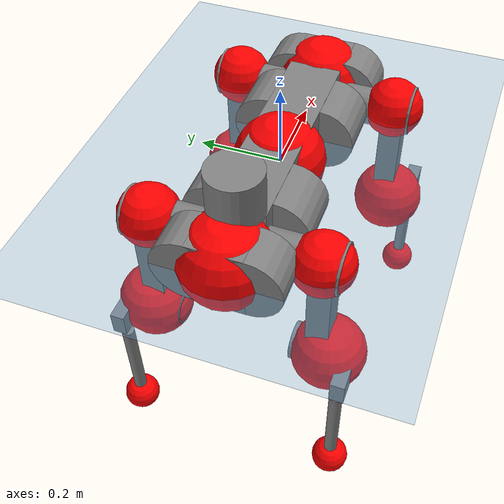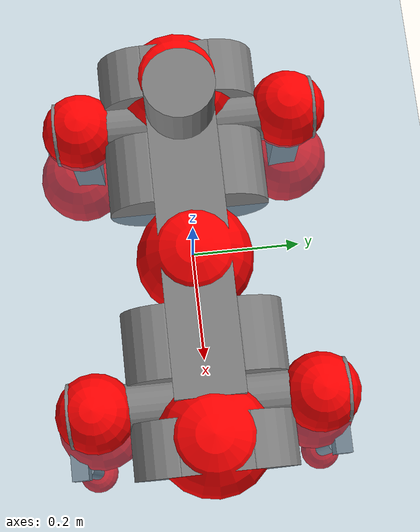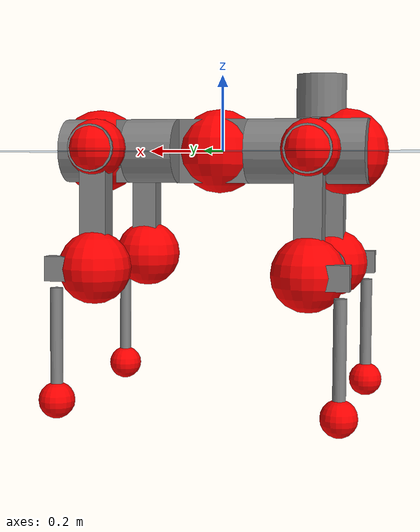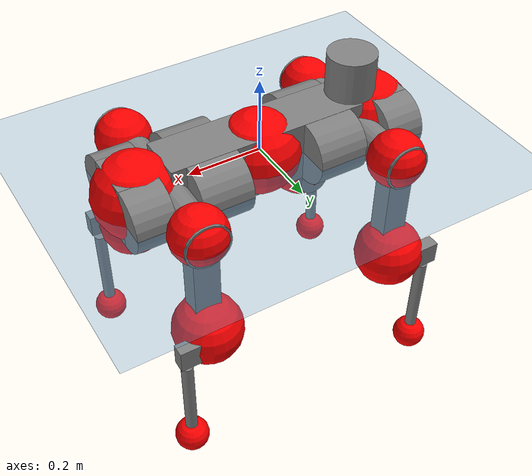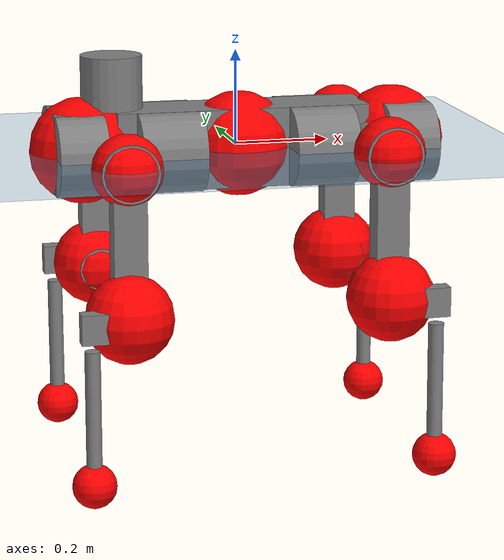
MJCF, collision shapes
<mujoco model="anymal_c">
  <compiler angle="radian" assetdir="assets" balanceinertia="true" inertiafromgeom="false"/>

  <option timestep="0.005" density="1.2" viscosity="2e-05"/>

  <size nkey="1"/>

  <visual>
    <quality shadowsize="8192"/>
    <map shadowclip="0.5"/>
  </visual>

  <default>
    <default class="/">
      <material specular="0" shininess="0.25"/>
      <geom contype="0" conaffinity="0" group="1" solref="-1000 -80"/>
      <site size="0.01 0.005 0.005" group="5"/>
      <general forcelimited="true" forcerange="-80 80" biastype="affine" gainprm="80" biasprm="0 -80 -2"/>
      <default class="anymal_c">
        <joint armature="0.01" damping="0.01" frictionloss="0.1"/>
        <default class="visual">
          <geom type="mesh" group="2"/>
          <default class="visual_zflip"/>
        </default>
        <default class="collision">
          <geom type="cylinder" group="3"/>
          <default class="foot">
            <geom size="0.03 0 0" type="sphere" condim="6" priority="1" friction="0.8 0.02 0.01" solimp="0.015 1 0.03"/>
          </default>
        </default>
      </default>
      <default class="reward_collision_sphere">
        <geom group="5" rgba="1 0 0 1"/>
      </default>
    </default>
  </default>

  <asset>
    <texture type="skybox" colorspace="auto" name="//unnamed_texture_0" builtin="gradient" rgb1="0.95 0.95 0.95" rgb2="0.95 0.95 0.95" width="100" height="600"/>
    <texture type="2d" colorspace="auto" name="texplane" builtin="checker" rgb1="0.345 0.575 0.748" rgb2="0.345 0.575 0.748" markrgb="1 1 1" width="512" height="512"/>
    <texture type="2d" colorspace="linear" name="base" file="base.png"/>
    <texture type="2d" colorspace="linear" name="top_shell" file="top_shell.png"/>
    <texture type="2d" colorspace="linear" name="bottom_shell" file="bottom_shell.png"/>
    <texture type="2d" colorspace="linear" name="remote" file="remote.png"/>
    <texture type="2d" colorspace="linear" name="hatch" file="hatch.png"/>
    <texture type="2d" colorspace="linear" name="handle" file="handle.png"/>
    <texture type="2d" colorspace="linear" name="face" file="face.png"/>
    <texture type="2d" colorspace="linear" name="battery" file="battery.png"/>
    <texture type="2d" colorspace="linear" name="lidar_cage" file="lidar_cage.png"/>
    <texture type="2d" colorspace="linear" name="depth_camera" file="depth_camera.png"/>
    <texture type="2d" colorspace="linear" name="wide_angle_camera" file="wide_angle_camera.png"/>
    <texture type="2d" colorspace="linear" name="lidar" file="lidar.png"/>
    <texture type="2d" colorspace="linear" name="drive" file="drive.png"/>
    <texture type="2d" colorspace="linear" name="hip_l" file="hip_l.png"/>
    <texture type="2d" colorspace="linear" name="shank_l" file="shank_l.png"/>
    <texture type="2d" colorspace="linear" name="foot" file="foot.png"/>
    <texture type="2d" colorspace="linear" name="thigh" file="thigh.png"/>
    <texture type="2d" colorspace="linear" name="shank_r" file="shank_r.png"/>
    <texture type="2d" colorspace="linear" name="hip_r" file="hip_r.png"/>
    <material name="MatPlane" class="/" texture="texplane" texuniform="true" texrepeat="2 2" specular="0.9" shininess="0.5"/>
    <material name="black_plastic" class="/" rgba="0.007 0.007 0.007 1"/>
    <material name="green" class="/" rgba="0.052 0.178 0.033 1"/>
    <material name="red" class="/" rgba="0.178 0.006 0.005 1"/>
    <material name="yellow" class="/" rgba="0.178 0.119 0.006 1"/>
    <material name="lwl" class="/" rgba="0.8 0.8 0.8 1"/>
    <material name="base" class="/" texture="base"/>
    <material name="top_shell" class="/" texture="top_shell"/>
    <material name="bottom_shell" class="/" texture="bottom_shell"/>
    <material name="hip_l" class="/" texture="hip_l"/>
    <material name="thigh" class="/" texture="thigh"/>
    <material name="shank_l" class="/" texture="shank_l"/>
    <material name="foot" class="/" texture="foot"/>
    <material name="hip_r" class="/" texture="hip_r"/>
    <material name="shank" class="/" texture="shank_r"/>
    <material name="hatch" class="/" texture="hatch"/>
    <material name="remote" class="/" texture="remote"/>
    <material name="handle" class="/" texture="handle"/>
    <material name="face" class="/" texture="face"/>
    <material name="depth_camera" class="/" texture="depth_camera"/>
    <material name="wide_angle_camera" class="/" texture="wide_angle_camera"/>
    <material name="battery" class="/" texture="battery"/>
    <material name="lidar_cage" class="/" texture="lidar_cage"/>
    <material name="lidar" class="/" texture="lidar"/>
    <material name="drive" class="/" texture="drive"/>
    <mesh name="base_0" class="/" file="base_0.obj"/>
    <mesh name="base_1" class="/" file="base_1.obj"/>
    <mesh name="base_2" class="/" file="base_2.obj"/>
    <mesh name="base_3" class="/" file="base_3.obj"/>
    <mesh name="base_4" class="/" file="base_4.obj"/>
    <mesh name="base_5" class="/" file="base_5.obj"/>
    <mesh name="top_shell" class="/" file="top_shell.obj"/>
    <mesh name="bottom_shell" class="/" file="bottom_shell.obj"/>
    <mesh name="remote" class="/" file="remote.obj"/>
    <mesh name="handle" class="/" file="handle.obj"/>
    <mesh name="face" class="/" file="face.obj"/>
    <mesh name="wide_angle_camera" class="/" file="wide_angle_camera.obj"/>
    <mesh name="depth_camera" class="/" file="depth_camera.obj"/>
    <mesh name="battery" class="/" file="battery.obj"/>
    <mesh name="lidar_cage" class="/" file="lidar_cage.obj"/>
    <mesh name="lidar" class="/" file="lidar.obj"/>
    <mesh name="drive" class="/" file="drive.obj"/>
    <mesh name="hip_l" class="/" file="hip_l.obj"/>
    <mesh name="thigh" class="/" file="thigh.obj"/>
    <mesh name="shank_l" class="/" file="shank_l.obj"/>
    <mesh name="foot" class="/" file="foot.obj"/>
    <mesh name="hip_r" class="/" file="hip_r.obj"/>
    <mesh name="hatch" class="/" file="hatch.obj"/>
    <mesh name="shank_r" class="/" file="shank_r.obj"/>
  </asset>

  <worldbody>
    <geom name="floor" class="/" size="100 100 0.125" type="plane" group="0" material="MatPlane"/>
    <light name="toplight_shadow" class="/" pos="0 0 5" dir="0.0990148 0.0990148 -0.990148" type="directional" ambient="0.04 0.04 0.04" diffuse="0.55 0.55 0.55" specular="0.12 0.12 0.12"/>
    <light name="toplight_fill" class="/" pos="0 0 5" dir="0.0990148 0.0990148 -0.990148" type="directional" castshadow="false" ambient="0.04 0.04 0.04" diffuse="0.3 0.3 0.3" specular="0.08 0.08 0.08"/>
    <body name="trunk" childclass="anymal_c" pos="0.0072768 0.00328468 -0.000138789" quat="0.999997 0.00153193 -0.00114252 -0.00141027">
      <inertial pos="0.00980576 -0.00279392 0.0496925" quat="0.500221 0.50043 0.499048 0.5003" mass="15.0442" diaginertia="0.140896 0.532053 0.270707"/>
      <joint name="//unnamed_joint_0" type="free" armature="0" damping="0" frictionloss="0"/>
      <geom name="//unnamed_geom_1" class="visual" material="green" mesh="base_0"/>
      <geom name="//unnamed_geom_2" class="visual" material="yellow" mesh="base_1"/>
      <geom name="//unnamed_geom_3" class="visual" material="red" mesh="base_2"/>
      <geom name="//unnamed_geom_4" class="visual" material="black_plastic" mesh="base_3"/>
      <geom name="//unnamed_geom_5" class="visual" material="lwl" mesh="base_4"/>
      <geom name="//unnamed_geom_6" class="visual" material="base" mesh="base_5"/>
      <geom name="trunk_1" class="collision" size="0.268754 0.0648716 0.0834063" type="box"/>
      <geom name="trunk_2" class="collision" size="0.0834063 0.0671884" pos="0.162049 0.0678225 0" quat="0.707107 0 0.707107 0"/>
      <geom name="trunk_3" class="collision" size="0.0834063 0.0671884" pos="-0.162049 0.0678225 0" quat="0.707107 0 0.707107 0"/>
      <geom name="trunk_4" class="collision" size="0.0834063 0.0671884" pos="0.162049 -0.0678225 0" quat="0.707107 0 0.707107 0"/>
      <geom name="trunk_5" class="collision" size="0.0834063 0.0671884" pos="-0.162049 -0.0678225 0" quat="0.707107 0 0.707107 0"/>
      <geom name="//unnamed_geom_12" class="visual" material="top_shell" mesh="top_shell"/>
      <geom name="//unnamed_geom_13" class="visual" material="bottom_shell" mesh="bottom_shell"/>
      <geom name="//unnamed_geom_14" class="visual" material="remote" mesh="remote"/>
      <geom name="//unnamed_geom_15" class="visual" material="handle" mesh="handle"/>
      <geom name="//unnamed_geom_16" class="visual" pos="0.308824 0 0" quat="1 0 0 0" material="face" mesh="face"/>
      <geom name="trunk_6" class="collision" size="0.0509705 0.0648716 0.0834063" pos="0.349802 0 0" type="box"/>
      <geom name="//unnamed_geom_18" class="collision" size="0.0834063 0.0509705" pos="0.349802 0.0678225 0" quat="0.707107 0 0.707107 0"/>
      <geom name="//unnamed_geom_19" class="collision" size="0.0834063 0.0509705" pos="0.349802 -0.0678225 0" quat="0.707107 0 0.707107 0"/>
      <geom name="//unnamed_geom_20" class="visual" pos="0.343966 0 -0.0335762" quat="0.965926 0 0.258819 0" material="depth_camera" mesh="depth_camera"/>
      <geom name="//unnamed_geom_21" class="visual" pos="0.382211 0 0.015962" material="wide_angle_camera" mesh="wide_angle_camera"/>
      <geom name="//unnamed_geom_22" class="visual_zflip" pos="-0.308824 0 0" quat="0 0 0 1" material="face" mesh="face"/>
      <geom name="trunk_7" class="collision" size="0.0509705 0.0648716 0.0834063" pos="-0.349802 0 0" quat="0 0 0 1" type="box"/>
      <geom name="//unnamed_geom_24" class="collision" size="0.0834063 0.0509705" pos="-0.349802 -0.0678225 0" quat="0 -0.707107 0 0.707107"/>
      <geom name="//unnamed_geom_25" class="collision" size="0.0834063 0.0509705" pos="-0.349802 0.0678225 0" quat="0 -0.707107 0 0.707107"/>
      <geom name="//unnamed_geom_26" class="visual" pos="-0.343966 0 -0.0335762" quat="0 -0.258819 0 0.965926" material="depth_camera" mesh="depth_camera"/>
      <geom name="//unnamed_geom_27" class="visual_zflip" pos="-0.382211 0 0.015962" quat="0 0 0 1" material="wide_angle_camera" mesh="wide_angle_camera"/>
      <geom name="//unnamed_geom_28" class="visual" material="battery" mesh="battery"/>
      <geom name="//unnamed_geom_29" class="visual" pos="0 0.0770321 0.0285338" quat="0.683013 -0.183013 0.183013 0.683013" material="depth_camera" mesh="depth_camera"/>
      <geom name="//unnamed_geom_30" class="visual" pos="0 -0.0770321 0.0285338" quat="0.683013 0.183013 0.183013 -0.683013" material="depth_camera" mesh="depth_camera"/>
      <geom name="//unnamed_geom_31" class="visual" pos="-0.271199 0 0.0783706" quat="1 0 0 0" material="lidar_cage" mesh="lidar_cage"/>
      <geom name="trunk_8" class="collision" size="0.0648716 0.0556042" pos="-0.271199 0 0.142347"/>
      <geom name="//unnamed_geom_33" class="visual" pos="-0.271199 8.79411e-05 0.151623" quat="0.707107 0 0 -0.707107" material="lidar" mesh="lidar"/>
      <geom name="//unnamed_geom_34" class="visual" pos="0.223441 0.100799 -1.67972e-09" quat="0.258819 0.965926 0 0" material="drive" mesh="drive"/>
      <geom name="//unnamed_geom_35" class="visual" pos="0.223441 -0.100799 1.67972e-09" quat="0.258819 -0.965926 0 0" material="drive" mesh="drive"/>
      <geom name="//unnamed_geom_36" class="visual" pos="-0.223441 0.100799 1.67972e-09" quat="0 0 0.965926 -0.258819" material="drive" mesh="drive"/>
      <geom name="//unnamed_geom_37" class="visual" pos="-0.223441 -0.100799 -1.67972e-09" quat="0 0 -0.965926 -0.258819" material="drive" mesh="drive"/>
      <geom name="//unnamed_geom_38" class="visual" pos="0.086426 0 0.0778374" quat="1 0 0 0" material="hatch" mesh="hatch"/>
      <geom name="//unnamed_geom_39" class="reward_collision_sphere" size="0.111208"/>
      <geom name="//unnamed_geom_40" class="reward_collision_sphere" size="0.111208" pos="0.335273 0 0"/>
      <geom name="//unnamed_geom_41" class="reward_collision_sphere" size="0.111208" pos="-0.335273 0 0"/>
      <site name="imu" pos="0.191908 0.0101975 0.0429388" size="0.00926737"/>
      <camera name="track" pos="0 -1.93778 0" quat="0.707107 0.707107 0 0" mode="trackcom"/>
      <camera name="ego_camera" pos="0.335273 0 -0.0426507" quat="-0.5 -0.5 0.5 0.5"/>
      <body name="LF_HIP" pos="0.225812 0.103235 0.000310929" quat="0.260156 0.965561 -0.00304477 0.00151312">
        <inertial pos="0.0504002 -0.0134402 -0.00737848" quat="-0.132558 0.709348 -0.142777 0.677399" mass="2.00058" diaginertia="0.00121675 0.00422641 0.00413407"/>
        <joint name="LF_HAA" pos="0 0 0" axis="0.999912 0.0131875 -0.0014141" range="-0.757759 0.600697" armature="0.00736624" damping="0.0198564" frictionloss="0.0918282"/>
        <geom name="//unnamed_geom_42" class="visual" pos="0 -9.88101e-05 1.62295e-05" quat="0.258819 -0.965926 0 0" material="hip_l" mesh="hip_l"/>
        <geom name="//unnamed_geom_43" class="visual" pos="0.0446286 -0.0570588 -0.0336631" quat="0.183013 -0.683013 0.683013 0.183013" material="drive" mesh="drive"/>
        <geom name="//unnamed_geom_44" class="collision" size="0.0463368 0.0648716" pos="0.0446286 -0.0115878 -0.00736257" quat="-0.353553 -0.612372 0.612372 -0.353553"/>
        <body name="LF_THIGH" pos="0.0469784 -0.0676363 -0.0457754" quat="0.183578 -0.683277 0.682728 0.182522">
          <inertial pos="0.0157508 0.00140063 -0.268028" quat="0.99329 0.00306766 -0.0760649 0.0870667" mass="2.40014" diaginertia="0.00676491 0.0259596 0.00575461"/>
          <joint name="LF_HFE" pos="0 0 0" axis="0.999992 -6.34662e-05 -0.00404169" range="-3.04439 3.05665" armature="0.00732209" damping="0.0428288" frictionloss="0.0881981"/>
          <geom name="//unnamed_geom_45" class="visual" pos="-0.00445355 -7.01776e-06 0" quat="0.707107 0 0 -0.707107" material="thigh" mesh="thigh"/>
          <geom name="//unnamed_geom_46" class="collision" size="0.0602379 0.0370695" pos="0.0298021 0 0" quat="0.5 0.5 -0.5 -0.5"/>
          <geom name="//unnamed_geom_47" class="collision" size="0.0347526 0.0278021 0.130961" pos="0.0223515 0 -0.150678" quat="0.707107 0 0 -0.707107" type="box"/>
          <geom name="//unnamed_geom_48" class="visual" pos="0.0747287 0 -0.303886" quat="1 0 0 0" material="drive" mesh="drive"/>
          <geom name="//unnamed_geom_49" class="collision" size="0.0463368 0.0648716" pos="0.0225751 0 -0.303886" quat="0.707107 0 0.707107 0"/>
          <geom name="//unnamed_geom_50" class="reward_collision_sphere" size="0.0741389" pos="0.0186263 0 0"/>
          <body name="LF_SHANK" pos="0.0732862 0.00153993 -0.302877" quat="0.999999 -0.000162427 -0.000881443 0.00100517">
            <inertial pos="0.00208366 -0.0606238 -0.082098" quat="0.993258 -0.104862 -0.0188408 -0.0456966" mass="0.477001" diaginertia="0.0023183 0.00780726 0.00160287"/>
            <joint name="LF_KFE" pos="0 0 0" axis="0.999958 0.00857942 0.00335092" range="-3.18177 3.24359" armature="0.0100472" damping="0.0093975" frictionloss="0.0827266"/>
            <geom name="//unnamed_geom_51" class="visual" pos="-0.00145221 -0.00774324 0" quat="0.707107 0 0 -0.707107" material="shank_l" mesh="shank_l"/>
            <geom name="LF_kfe_act" class="collision" size="0.0556042 0.0185347" pos="0.014901 0 0" quat="0.5 0.5 -0.5 -0.5"/>
            <geom name="//unnamed_geom_53" class="collision" size="0.0532864 0.0312774 0.017608" pos="0.014901 -0.0557103 0" quat="0.5 0.5 -0.5 -0.5" type="box"/>
            <geom name="//unnamed_geom_54" class="visual" pos="0.00972327 -0.0877094 -0.360366" quat="0.382683 0 0 -0.92388" material="foot" mesh="foot"/>
            <geom name="LF_calf" class="collision" size="0.0162179 0.130903" pos="0.00972292 -0.0852141 -0.180183" quat="0.707107 0 0 -0.707107"/>
            <geom name="LF_foot" class="foot" size="0.0305855" pos="0.00972292 -0.0852141 -0.336375" quat="0.707107 0 0 -0.707107"/>
            <geom name="//unnamed_geom_57" class="reward_collision_sphere" size="0.0926737" pos="-0.0372526 0 0"/>
            <geom name="//unnamed_geom_58" class="reward_collision_sphere" size="0.0463368" pos="0.00972292 -0.0852141 -0.336375"/>
            <site name="LF_foot" class="foot" pos="0.00972292 -0.0852141 -0.336375" quat="0.707107 0 0 -0.707107" size="0.00926737"/>
          </body>
        </body>
      </body>
      <body name="RF_HIP" pos="0.223446 -0.106161 -0.00175943" quat="0.258486 -0.966015 -0.000102633 0.000186081">
        <inertial pos="0.0378194 0.0163859 -0.00843775" quat="0.142024 0.678122 0.123026 0.710524" mass="1.87817" diaginertia="0.00125725 0.00394436 0.00448761"/>
        <joint name="RF_HAA" pos="0 0 0" axis="0.999999 -0.000276195 -0.00107894" range="-0.525471 0.741638" armature="0.0127482" damping="0.00951866" frictionloss="0.0580528"/>
        <geom name="//unnamed_geom_59" class="visual" pos="0 9.88093e-05 1.62294e-05" quat="0.258819 0.965926 0 0" material="hip_r" mesh="hip_r"/>
        <geom name="//unnamed_geom_60" class="visual" pos="0.0446286 0.0570588 -0.0336631" quat="0.183013 0.683013 0.683013 -0.183013" material="drive" mesh="drive"/>
        <geom name="//unnamed_geom_61" class="collision" size="0.0463368 0.0648716" pos="0.0446286 0.0115878 -0.00736257" quat="-0.353553 0.612372 0.612372 0.353553"/>
        <body name="RF_THIGH" pos="0.0478484 0.0693655 -0.0505844" quat="0.181967 0.685146 0.680812 -0.184277">
          <inertial pos="0.0265314 0.00800144 -0.263181" quat="0.993772 -0.00600443 -0.0791732 0.0781825" mass="2.68321" diaginertia="0.00693292 0.0254924 0.00606937"/>
          <joint name="RF_HFE" pos="0 0 0" axis="0.999909 0.00144614 0.0134216" stiffness="0.0101963" range="-3.16308 3.13467" armature="0.00913209" damping="0.0110959" frictionloss="0.0915974"/>
          <geom name="//unnamed_geom_62" class="visual" pos="-0.00445355 -7.01776e-06 0" quat="0.707107 0 0 -0.707107" material="thigh" mesh="thigh"/>
          <geom name="//unnamed_geom_63" class="collision" size="0.0602379 0.0370695" pos="0.0298021 0 0" quat="0.5 0.5 0.5 0.5"/>
          <geom name="//unnamed_geom_64" class="collision" size="0.0347526 0.0278021 0.130961" pos="0.0223515 0 -0.150678" quat="0.707107 0 0 0.707107" type="box"/>
          <geom name="//unnamed_geom_65" class="visual" pos="0.0747287 0 -0.303886" quat="1 0 0 0" material="drive" mesh="drive"/>
          <geom name="//unnamed_geom_66" class="collision" size="0.0463368 0.0648716" pos="0.0225751 0 -0.303886" quat="0.707107 0 0.707107 0"/>
          <geom name="//unnamed_geom_67" class="reward_collision_sphere" size="0.0741389" pos="0.0186263 0 0"/>
          <body name="RF_SHANK" pos="0.0717078 3.85715e-05 -0.303529" quat="1 0.000193648 0.000195671 -4.05805e-05">
            <inertial pos="0.00285727 0.0599485 -0.0871052" quat="0.993873 0.107302 -0.0072987 0.0254927" mass="0.446733" diaginertia="0.00204202 0.00773072 0.00147751"/>
            <joint name="RF_KFE" pos="0 0 0" axis="0.999734 -0.0226247 -0.00455178" stiffness="0.00839951" range="-3.11442 3.09544" armature="0.0102191" damping="0" frictionloss="0.0994941"/>
            <geom name="//unnamed_geom_68" class="visual" pos="-0.0014522 0.00774322 0" quat="0.707107 0 0 0.707107" material="shank" mesh="shank_r"/>
            <geom name="RF_kfe_act" class="collision" size="0.0556042 0.0185347" pos="0.014901 0 0" quat="0.5 0.5 0.5 0.5"/>
            <geom name="//unnamed_geom_70" class="collision" size="0.0532864 0.0312774 0.017608" pos="0.014901 0.0557103 0" quat="0.5 0.5 0.5 0.5" type="box"/>
            <geom name="//unnamed_geom_71" class="visual" pos="0.00972257 0.0877094 -0.360366" quat="0.382683 0 0 0.92388" material="foot" mesh="foot"/>
            <geom name="RF_calf" class="collision" size="0.0162179 0.130903" pos="0.00972292 0.0852141 -0.180183" quat="0.707107 0 0 0.707107"/>
            <geom name="RF_foot" class="foot" size="0.0326992" pos="0.00972292 0.0852141 -0.336375" quat="0.707107 0 0 0.707107"/>
            <geom name="//unnamed_geom_74" class="reward_collision_sphere" size="0.0926737" pos="-0.0372526 0 0"/>
            <geom name="//unnamed_geom_75" class="reward_collision_sphere" size="0.0463368" pos="0.00972292 0.0852141 -0.336375"/>
            <site name="RF_foot" class="foot" pos="0.00972292 0.0852141 -0.336375" quat="0.707107 0 0 0.707107" size="0.00926737"/>
          </body>
        </body>
      </body>
      <body name="LH_HIP" pos="-0.224446 0.103416 -0.00177691" quat="0.00296976 -0.0012042 0.965109 -0.261827">
        <inertial pos="0.0349657 0.0128086 -0.00679306" quat="0.136845 0.678706 0.127851 0.710131" mass="2.30867" diaginertia="0.0013794 0.00409273 0.00455133"/>
        <joint name="LH_HAA" pos="0 0 0" axis="0.999975 0.00711785 0.000203747" range="-0.532949 0.767548" armature="0.00924316" damping="0.00527064" frictionloss="0.0936963"/>
        <geom name="//unnamed_geom_76" class="visual" pos="0 9.88093e-05 1.62294e-05" quat="-0.258819 -0.965926 0 0" material="hip_r" mesh="hip_r"/>
        <geom name="//unnamed_geom_77" class="visual" pos="0.0446286 0.0570588 -0.0336631" quat="0.183013 0.683013 0.683013 -0.183013" material="drive" mesh="drive"/>
        <geom name="//unnamed_geom_78" class="collision" size="0.0463368 0.0648716" pos="0.0446286 0.0115878 -0.00736257" quat="-0.353553 0.612372 0.612372 0.353553"/>
        <body name="LH_THIGH" pos="0.0512159 0.0700764 -0.0486385" quat="0.184101 0.682079 0.68281 -0.186134">
          <inertial pos="0.022122 -0.00198657 -0.263786" quat="0.993688 -0.0222194 -0.0873718 0.0667647" mass="2.59062" diaginertia="0.00701756 0.0268052 0.00579498"/>
          <joint name="LH_HFE" pos="0 0 0" axis="0.999894 -0.0123643 -0.00765205" range="-3.18608 3.12551" armature="0.0104588" damping="0.0426567" frictionloss="0.0901367"/>
          <geom name="//unnamed_geom_79" class="visual" pos="-0.00445355 -7.01776e-06 0" quat="0.707107 0 0 -0.707107" material="thigh" mesh="thigh"/>
          <geom name="//unnamed_geom_80" class="collision" size="0.0602379 0.0370695" pos="0.0298021 0 0" quat="0.5 0.5 -0.5 -0.5"/>
          <geom name="//unnamed_geom_81" class="collision" size="0.0347526 0.0278021 0.130961" pos="0.0223515 0 -0.150678" quat="0.707107 0 0 -0.707107" type="box"/>
          <geom name="//unnamed_geom_82" class="visual" pos="0.0747287 0 -0.303886" quat="1 0 0 0" material="drive" mesh="drive"/>
          <geom name="//unnamed_geom_83" class="collision" size="0.0463368 0.0648716" pos="0.0225751 0 -0.303886" quat="0.707107 0 0.707107 0"/>
          <geom name="//unnamed_geom_84" class="reward_collision_sphere" size="0.0741389" pos="0.0186263 0 0"/>
          <body name="LH_SHANK" pos="0.0758634 0.00073891 -0.304921" quat="1 6.64558e-05 -1.93844e-05 1.56249e-05">
            <inertial pos="0.00367425 0.0596363 -0.0878043" quat="0.993236 0.113833 -0.00142932 0.022874" mass="0.463924" diaginertia="0.00234364 0.00805468 0.00151069"/>
            <joint name="LH_KFE" pos="0 0 0" axis="1 2.59026e-05 -0.000135424" range="-3.172 3.13446" armature="0.00969657" damping="0.0371244" frictionloss="0.0869393"/>
            <geom name="//unnamed_geom_85" class="visual" pos="-0.0014522 0.00774322 0" quat="-0.707107 0 0 -0.707107" material="shank" mesh="shank_r"/>
            <geom name="LH_kfe_act" class="collision" size="0.0556042 0.0185347" pos="0.014901 0 0" quat="0.5 0.5 -0.5 -0.5"/>
            <geom name="//unnamed_geom_87" class="collision" size="0.0532864 0.0312774 0.017608" pos="0.014901 0.0557103 0" quat="0.5 0.5 -0.5 -0.5" type="box"/>
            <geom name="//unnamed_geom_88" class="visual" pos="0.00972257 0.0877094 -0.360366" quat="-0.382683 0 0 -0.92388" material="foot" mesh="foot"/>
            <geom name="LH_calf" class="collision" size="0.0162179 0.130903" pos="0.00972292 0.0852141 -0.180183" quat="0.707107 0 0 -0.707107"/>
            <geom name="LH_foot" class="foot" size="0.0247046" pos="0.00972292 0.0852141 -0.336375" quat="0.707107 0 0 -0.707107"/>
            <geom name="//unnamed_geom_91" class="reward_collision_sphere" size="0.0926737" pos="-0.0372526 0 0"/>
            <geom name="//unnamed_geom_92" class="reward_collision_sphere" size="0.0463368" pos="0.00972292 0.0852141 -0.336375"/>
            <site name="LH_foot" class="foot" pos="0.00972292 0.0852141 -0.336375" quat="0.707107 0 0 -0.707107" size="0.00926737"/>
          </body>
        </body>
      </body>
      <body name="RH_HIP" pos="-0.225677 -0.0938081 -0.00490324" quat="0.00068357 -0.0014953 -0.965952 -0.258714">
        <inertial pos="0.042396 -0.0193364 -0.00864067" quat="-0.112896 0.728356 -0.143048 0.660522" mass="2.18039" diaginertia="0.00129663 0.00401907 0.0044755"/>
        <joint name="RH_HAA" pos="0 0 0" axis="0.999969 0.0010552 -0.00784622" range="-0.682779 0.503725" armature="0.00564995" damping="0" frictionloss="0.118699"/>
        <geom name="//unnamed_geom_93" class="visual" pos="0 -9.88101e-05 1.62295e-05" quat="-0.258819 0.965926 0 0" material="hip_l" mesh="hip_l"/>
        <geom name="//unnamed_geom_94" class="visual" pos="0.0446286 -0.0570588 -0.0336631" quat="-0.183013 0.683013 -0.683013 -0.183013" material="drive" mesh="drive"/>
        <geom name="//unnamed_geom_95" class="collision" size="0.0463368 0.0648716" pos="0.0446286 -0.0115878 -0.00736257" quat="0.353553 0.612372 -0.612372 0.353553"/>
        <body name="RH_THIGH" pos="0.0472538 -0.0726519 -0.0394159" quat="-0.1829 0.683014 -0.683069 -0.18291">
          <inertial pos="0.0238741 0.000866683 -0.259827" quat="0.993112 -0.00493563 -0.0810826 0.0844381" mass="2.45898" diaginertia="0.00692637 0.0253939 0.0061937"/>
          <joint name="RH_HFE" pos="0 0 0" axis="0.999953 0.00955515 -0.00171255" stiffness="0.0151325" range="-3.01357 3.09694" armature="0.00858071" damping="0" frictionloss="0.0864274"/>
          <geom name="//unnamed_geom_96" class="visual" pos="-0.00445355 -7.01776e-06 0" quat="0.707107 0 0 -0.707107" material="thigh" mesh="thigh"/>
          <geom name="//unnamed_geom_97" class="collision" size="0.0602379 0.0370695" pos="0.0298021 0 0" quat="0.5 0.5 0.5 0.5"/>
          <geom name="//unnamed_geom_98" class="collision" size="0.0347526 0.0278021 0.130961" pos="0.0223515 0 -0.150678" quat="0.707107 0 0 0.707107" type="box"/>
          <geom name="//unnamed_geom_99" class="visual" pos="0.0747287 0 -0.303886" quat="1 0 0 0" material="drive" mesh="drive"/>
          <geom name="//unnamed_geom_100" class="collision" size="0.0463368 0.0648716" pos="0.0225751 0 -0.303886" quat="0.707107 0 0.707107 0"/>
          <geom name="//unnamed_geom_101" class="reward_collision_sphere" size="0.0741389" pos="0.0186263 0 0"/>
          <body name="RH_SHANK" pos="0.0839657 -0.0039054 -0.302535" quat="1 0.000703243 0.000492287 0.000416382">
            <inertial pos="-0.00448305 -0.0594496 -0.0876104" quat="0.992969 -0.115475 -0.00115871 -0.0259957" mass="0.460743" diaginertia="0.00250645 0.00903047 0.00162904"/>
            <joint name="RH_KFE" pos="0 0 0" axis="0.999921 0.0108322 -0.0064495" range="-3.2113 2.96273" armature="0.0114686" damping="0.0170895" frictionloss="0.0984178"/>
            <geom name="//unnamed_geom_102" class="visual" pos="-0.00145221 -0.00774324 0" quat="0.707107 0 0 -0.707107" material="shank_l" mesh="shank_l"/>
            <geom name="RH_kfe_act" class="collision" size="0.0556042 0.0185347" pos="0.014901 0 0" quat="0.5 0.5 0.5 0.5"/>
            <geom name="//unnamed_geom_104" class="collision" size="0.0532864 0.0312774 0.017608" pos="0.014901 -0.0557103 0" quat="0.5 0.5 0.5 0.5" type="box"/>
            <geom name="//unnamed_geom_105" class="visual" pos="0.00972327 -0.0877094 -0.360366" quat="0.382683 0 0 -0.92388" material="foot" mesh="foot"/>
            <geom name="RH_calf" class="collision" size="0.0162179 0.130903" pos="0.00972292 -0.0852141 -0.180183" quat="0.707107 0 0 0.707107"/>
            <geom name="RH_foot" class="foot" size="0.0277633" pos="0.00972292 -0.0852141 -0.336375" quat="0.707107 0 0 0.707107"/>
            <geom name="//unnamed_geom_108" class="reward_collision_sphere" size="0.0926737" pos="-0.0372526 0 0"/>
            <geom name="//unnamed_geom_109" class="reward_collision_sphere" size="0.0463368" pos="0.00972292 -0.0852141 -0.336375"/>
            <site name="RH_foot" class="foot" pos="0.00972292 -0.0852141 -0.336375" quat="0.707107 0 0 0.707107" size="0.00926737"/>
          </body>
        </body>
      </body>
    </body>
  </worldbody>

  <contact>
    <pair class="/" geom1="floor" geom2="LF_foot" name="//unnamed_contact_0"/>
    <pair class="/" geom1="floor" geom2="RF_foot" name="//unnamed_contact_1"/>
    <pair class="/" geom1="floor" geom2="LH_foot" name="//unnamed_contact_2"/>
    <pair class="/" geom1="floor" geom2="RH_foot" name="//unnamed_contact_3"/>
  </contact>

  <actuator>
    <general name="LF_HAA" class="/" joint="LF_HAA" forcerange="-72.4336 72.4336" gainprm="75.3086" biasprm="0 -75.3086 -2.12934"/>
    <general name="LF_HFE" class="/" joint="LF_HFE" forcerange="-77.652 77.652" gainprm="75.3086" biasprm="0 -75.3086 -2.12934"/>
    <general name="LF_KFE" class="/" joint="LF_KFE" forcerange="-71.7603 71.7603" gainprm="75.3086" biasprm="0 -75.3086 -2.12934"/>
    <general name="RF_HAA" class="/" joint="RF_HAA" forcerange="-51.1865 51.1865" gainprm="75.3086" biasprm="0 -75.3086 -2.12934"/>
    <general name="RF_HFE" class="/" joint="RF_HFE" forcerange="-77.46 77.46" gainprm="75.3086" biasprm="0 -75.3086 -2.12934"/>
    <general name="RF_KFE" class="/" joint="RF_KFE" forcerange="-84.9764 84.9764" gainprm="75.3086" biasprm="0 -75.3086 -2.12934"/>
    <general name="LH_HAA" class="/" joint="LH_HAA" forcerange="-69.9186 69.9186" gainprm="75.3086" biasprm="0 -75.3086 -2.12934"/>
    <general name="LH_HFE" class="/" joint="LH_HFE" forcerange="-69.8274 69.8274" gainprm="75.3086" biasprm="0 -75.3086 -2.12934"/>
    <general name="LH_KFE" class="/" joint="LH_KFE" forcerange="-81.3172 81.3172" gainprm="75.3086" biasprm="0 -75.3086 -2.12934"/>
    <general name="RH_HAA" class="/" joint="RH_HAA" forcerange="-81.2884 81.2884" gainprm="75.3086" biasprm="0 -75.3086 -2.12934"/>
    <general name="RH_HFE" class="/" joint="RH_HFE" forcerange="-72.1737 72.1737" gainprm="75.3086" biasprm="0 -75.3086 -2.12934"/>
    <general name="RH_KFE" class="/" joint="RH_KFE" forcerange="-56.6092 56.6092" gainprm="75.3086" biasprm="0 -75.3086 -2.12934"/>
  </actuator>

  <sensor>
    <gyro site="imu" name="imu_angular_velocity"/>
    <velocimeter site="imu" name="imu_linear_velocity"/>
    <framelinvel objtype="site" objname="LF_foot" name="LF_foot_global_linear_velocity"/>
    <framelinvel objtype="site" objname="RF_foot" name="RF_foot_global_linear_velocity"/>
    <framelinvel objtype="site" objname="LH_foot" name="LH_foot_global_linear_velocity"/>
    <framelinvel objtype="site" objname="RH_foot" name="RH_foot_global_linear_velocity"/>
  </sensor>

  <keyframe>
    <key name="home" qpos="0 0 0.55 1 0 0 0 0 0.4 -0.8 0 -0.4 0.8 0 -0.4 0.8 0 0.4 -0.8"/>
  </keyframe>
</mujoco>
